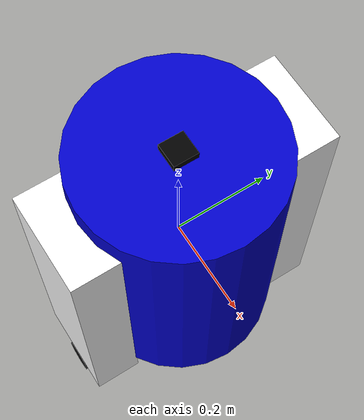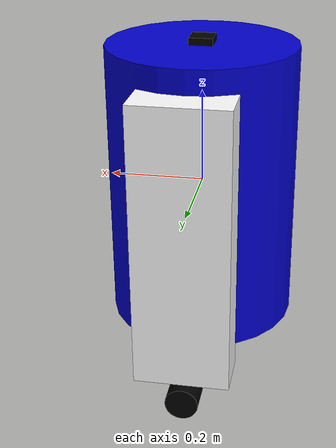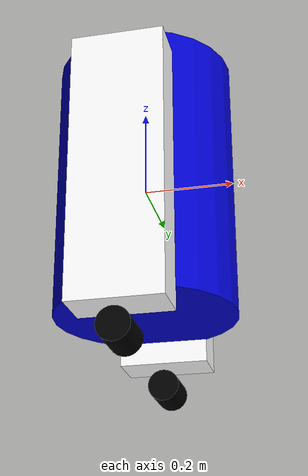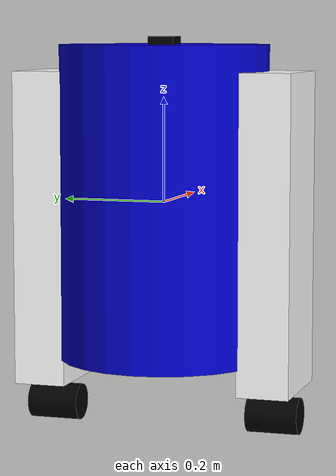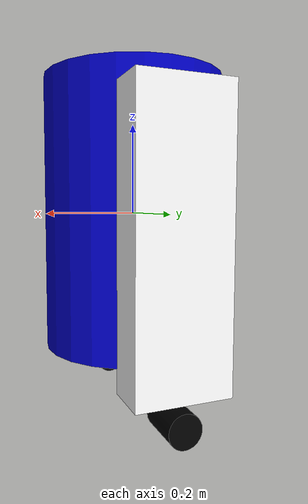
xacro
<?xml version="1.0"?>
<robot xmlns:xacro="http://www.ros.org/wiki/xacro" name="limo">
    <!-- 상수 정의 -->
    <xacro:property name="body_length" value="0.6"/>
    <xacro:property name="body_radius" value="0.2"/>
    <xacro:property name="leg_length" value="0.6"/>
    <xacro:property name="leg_width" value="0.1"/>
    <xacro:property name="leg_height" value="0.2"/>
    <xacro:property name="wheel_length" value="0.1"/>
    <xacro:property name="wheel_radius" value="0.035"/>
    <xacro:property name="leg_offset_y" value="0.22"/>
    <xacro:property name="leg_offset_z" value="0.25"/>
    <xacro:property name="wheel_offset_z" value="-0.65"/>
    <xacro:property name="lidar_height" value="0.1"/>
    <xacro:property name="camera_offset_z" value="0.3"/>

    <!-- 재질 정의 -->
    <material name="white">
        <color rgba="1 1 1 1"/>
    </material>
    <material name="blue">
        <color rgba="0 0 0.8 1"/>
    </material>
    <material name="black">
        <color rgba="0 0 0 1"/>
    </material>

    <!-- 매크로 정의 -->
    <xacro:macro name="default_inertial" params="mass *shape">
        <collision>
            <xacro:insert_block name="shape"/>
        </collision>
        <inertial>
            <mass value="${mass}"/>
            <!-- 단순화된 관성 행렬: 교육용으로 작은 값 사용 -->
            <origin xyz="0 0 0"/>
            <inertia ixx="0.001" ixy="0.0" ixz="0.0" iyy="0.001" iyz="0.0" izz="0.001"/>
        </inertial>
    </xacro:macro>

    <xacro:macro name="leg_macro" params="side">
        <link name="${side}_leg">
            <visual>
                <geometry>
                    <box size="${leg_length} ${leg_width} ${leg_height}"/>
                </geometry>
                <origin rpy="0 1.57 0" xyz="0 0 -0.3"/>
                <material name="white"/>
            </visual>
            <xacro:default_inertial mass="1">
                <geometry>
                    <box size="${leg_length} ${leg_width} ${leg_height}"/>
                </geometry>
            </xacro:default_inertial>
        </link>
        <joint name="base_to_${side}_leg" type="fixed">
            <parent link="base_link"/>
            <child link="${side}_leg"/>
            <xacro:property name="y_offset" value="${-leg_offset_y if side == 'right' else leg_offset_y}"/>
            <origin xyz="0 ${y_offset} ${leg_offset_z}"/>
        </joint>
    </xacro:macro>

    <xacro:macro name="wheel_macro" params="side">
        <link name="${side}_front_wheel">
            <visual>
                <geometry>
                    <cylinder length="${wheel_length}" radius="${wheel_radius}"/>
                </geometry>
                <origin rpy="1.57 0 0" xyz="0 0 0"/>
                <material name="black"/>
            </visual>
            <xacro:default_inertial mass="1">
                <geometry>
                    <cylinder length="${wheel_length}" radius="${wheel_radius}"/>
                </geometry>
            </xacro:default_inertial>
        </link>
        <joint name="${side}_front_wheel_joint" type="continuous">
            <axis xyz="0 1 0"/>
            <parent link="${side}_leg"/>
            <child link="${side}_front_wheel"/>
            <origin xyz="0 0 ${wheel_offset_z}"/>
        </joint>
    </xacro:macro>

    <xacro:macro name="sensor_macro" params="type name offset_z">
        <link name="${name}">
            <visual>
                <geometry>
                    <xacro:if value="${type == 'lidar'}">
                        <cylinder length="0.05" radius="0.03"/>
                    </xacro:if>
                    <xacro:if value="${type == 'camera'}">
                        <box size="0.05 0.05 0.03"/>
                    </xacro:if>
                </geometry>
                <material name="black"/>
            </visual>
            <xacro:default_inertial mass="0.1">
                <geometry>
                    <xacro:if value="${type == 'lidar'}">
                        <cylinder length="0.05" radius="0.03"/>
                    </xacro:if>
                    <xacro:if value="${type == 'camera'}">
                        <box size="0.05 0.05 0.03"/>
                    </xacro:if>
                </geometry>
            </xacro:default_inertial>
        </link>
        <joint name="base_to_${name}" type="fixed">
            <parent link="base_link"/>
            <child link="${name}"/>
            <origin xyz="0 0 ${offset_z}"/>
        </joint>
    </xacro:macro>

    <!-- 링크 및 조인트 정의 -->
    <link name="base_link">
        <visual>
            <geometry>
                <cylinder length="${body_length}" radius="${body_radius}"/>
            </geometry>
            <material name="blue"/>
        </visual>
        <xacro:default_inertial mass="10">
            <geometry>
                <cylinder length="${body_length}" radius="${body_radius}"/>
            </geometry>
        </xacro:default_inertial>
    </link>

    <!-- Gazebo 속성 추가 -->
    <gazebo reference="base_link">
        <material>Gazebo/Blue</material>
        <mu1>0.8</mu1>
        <mu2>0.6</mu2>
    </gazebo>

    <!-- 좌우 다리 및 바퀴 추가 -->
    <xacro:leg_macro side="right"/>
    <xacro:leg_macro side="left"/>
    <gazebo reference="right_leg">
        <material>Gazebo/White</material>
        <mu1>0.7</mu1>
        <mu2>0.5</mu2>
    </gazebo>
    <gazebo reference="left_leg">
        <material>Gazebo/White</material>
        <mu1>0.7</mu1>
        <mu2>0.5</mu2>
    </gazebo>

    <xacro:wheel_macro side="right"/>
    <xacro:wheel_macro side="left"/>
    <gazebo reference="right_front_wheel">
        <material>Gazebo/Black</material>
        <mu1>1.0</mu1>
        <mu2>0.9</mu2>
    </gazebo>
    <gazebo reference="left_front_wheel">
        <material>Gazebo/Black</material>
        <mu1>1.0</mu1>
        <mu2>0.9</mu2>
    </gazebo>

    <!-- 센서 추가 -->
    <xacro:sensor_macro type="lidar" name="lidar" offset_z="${lidar_height}"/>
    <gazebo reference="lidar">
        <material>Gazebo/Black</material>
        <sensor type="ray" name="lidar_sensor">
            <ray>
                <range>
                    <min>0.1</min>
                    <max>10.0</max>
                </range>
            </ray>
            <plugin name="lidar_plugin" filename="libgazebo_ros_laser.so">
                <ros>
                    <namespace>/lidar</namespace>
                    <remapping>~/out:=scan</remapping>
                </ros>
            </plugin>
        </sensor>
    </gazebo>

    <xacro:sensor_macro type="camera" name="camera" offset_z="${camera_offset_z}"/>
    <gazebo reference="camera">
        <material>Gazebo/Black</material>
        <sensor type="camera" name="camera_sensor">
            <camera>
                <image>
                    <width>640</width>
                    <height>480</height>
                </image>
            </camera>
            <plugin name="camera_plugin" filename="libgazebo_ros_camera.so">
                <ros>
                    <namespace>/camera</namespace>
                    <remapping>~/out:=image_raw</remapping>
                </ros>
            </plugin>
        </sensor>
    </gazebo>
</robot>
